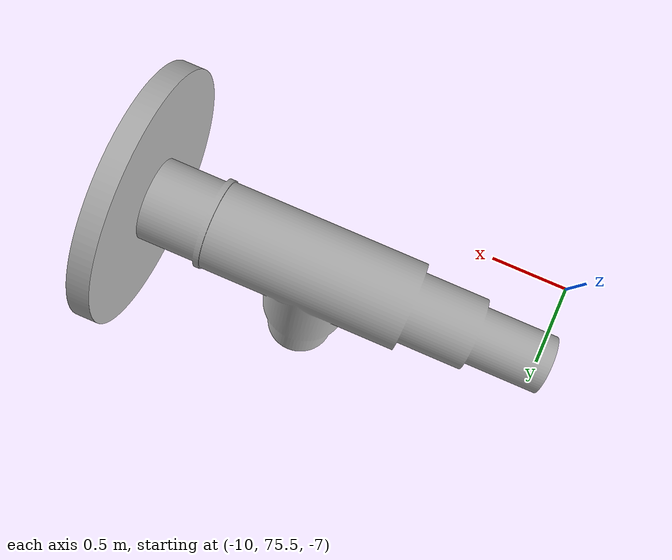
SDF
<sdf version="1.6">
  <model name="push_button">
    <link name="link">
    <visual name='visual'>
      <geometry>
        <mesh>
          <uri>model://push_button/meshes/push_button.stl</uri>
	  <scale>0.01 0.01 0.01</scale>
        </mesh>
      </geometry>
    </visual>

    <collision name='collision'>
      <geometry>
        <mesh>
          <uri>model://push_button/meshes/push_button.stl</uri>
	        <scale>0.01 0.01 0.01</scale>
        </mesh>
      </geometry>
    </collision>

    </link>
  </model>
</sdf>
